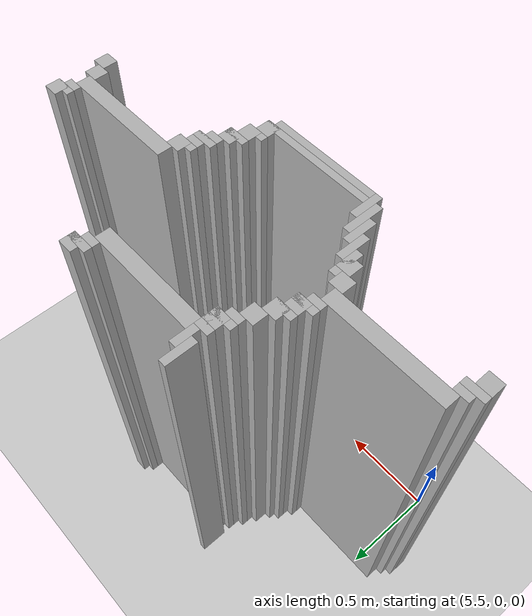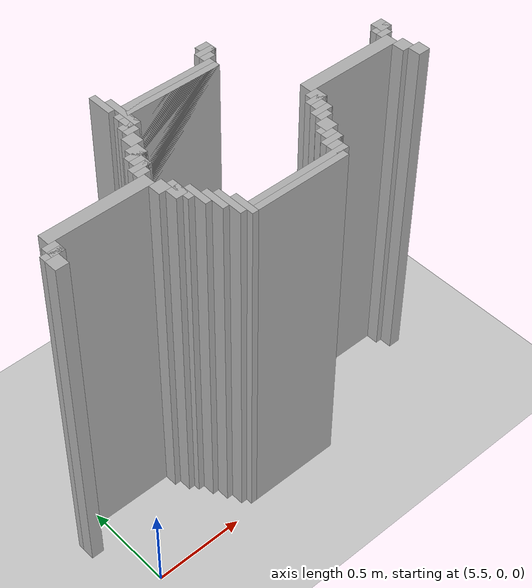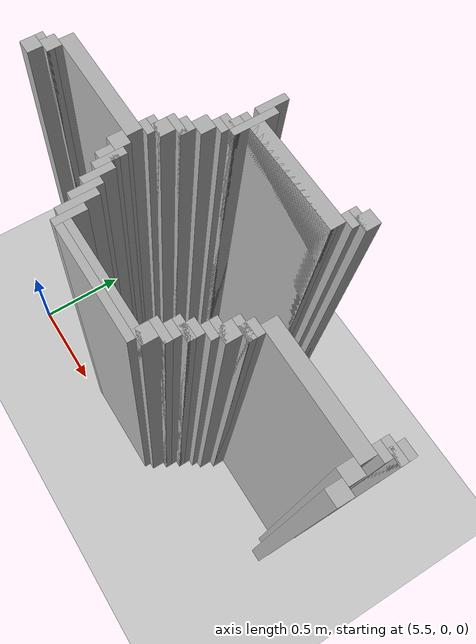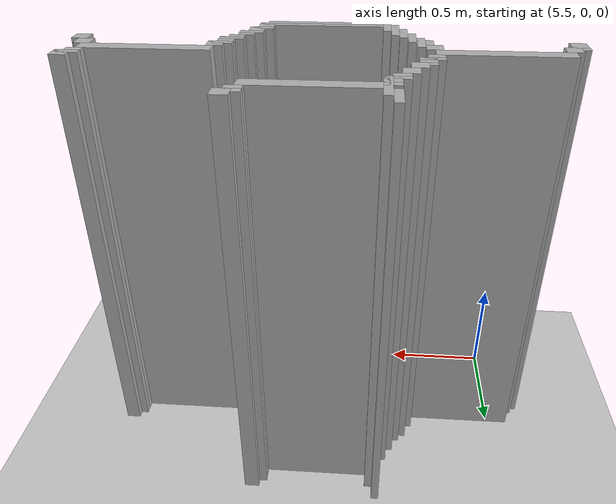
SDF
<sdf version="1.6">
 <world name="slam_world">
  <model name="ground_plane">
   <static>true</static>
   <link name="link">
    <collision name="collision">
     <geometry><plane><normal>0 0 1</normal><size>100 100</size></plane></geometry>
    </collision>
    <visual name="visual">
     <geometry><plane><normal>0 0 1</normal><size>100 100</size></plane></geometry>
     <material>
      <ambient>0.8 0.8 0.8 1</ambient>
      <diffuse>0.8 0.8 0.8 1</diffuse>
      <specular>0.8 0.8 0.8 1</specular>
     </material>
    </visual>
   </link>
  </model>
  <model name="wall_5399">
   <static>true</static>
   <pose>6.107888631090487 1.0092807424593968 1.0 0 0 0</pose>
   <link name="link">
    <collision name="collision">
     <geometry><box><size>0.03480278422273782 0.13921113689095127 2.0</size></box></geometry>
    </collision>
    <visual name="visual">
     <geometry><box><size>0.03480278422273782 0.13921113689095127 2.0</size></box></geometry>
     <material><ambient>0.5 0.5 0.5 1</ambient><diffuse>0.7 0.7 0.7 1</diffuse></material>
    </visual>
   </link>
  </model>
  <model name="wall_5409">
   <static>true</static>
   <pose>6.716937354988398 1.0092807424593968 1.0 0 0 0</pose>
   <link name="link">
    <collision name="collision">
     <geometry><box><size>0.06960556844547564 0.06960556844547564 2.0</size></box></geometry>
    </collision>
    <visual name="visual">
     <geometry><box><size>0.06960556844547564 0.06960556844547564 2.0</size></box></geometry>
     <material><ambient>0.5 0.5 0.5 1</ambient><diffuse>0.7 0.7 0.7 1</diffuse></material>
    </visual>
   </link>
  </model>
  <model name="wall_5415">
   <static>true</static>
   <pose>6.142691415313225 0.9048723897911832 1.0 0 0 0</pose>
   <link name="link">
    <collision name="collision">
     <geometry><box><size>0.03480278422273782 0.2088167053364269 2.0</size></box></geometry>
    </collision>
    <visual name="visual">
     <geometry><box><size>0.03480278422273782 0.2088167053364269 2.0</size></box></geometry>
     <material><ambient>0.5 0.5 0.5 1</ambient><diffuse>0.7 0.7 0.7 1</diffuse></material>
    </visual>
   </link>
  </model>
  <model name="wall_5416">
   <static>true</static>
   <pose>6.69953596287703 0.9918793503480278 1.0 0 0 0</pose>
   <link name="link">
    <collision name="collision">
     <geometry><box><size>0.10440835266821345 0.03480278422273782 2.0</size></box></geometry>
    </collision>
    <visual name="visual">
     <geometry><box><size>0.10440835266821345 0.03480278422273782 2.0</size></box></geometry>
     <material><ambient>0.5 0.5 0.5 1</ambient><diffuse>0.7 0.7 0.7 1</diffuse></material>
    </visual>
   </link>
  </model>
  <model name="wall_5425">
   <static>true</static>
   <pose>6.682134570765661 0.95707656612529 1.0 0 0 0</pose>
   <link name="link">
    <collision name="collision">
     <geometry><box><size>0.06960556844547564 0.03480278422273782 2.0</size></box></geometry>
    </collision>
    <visual name="visual">
     <geometry><box><size>0.06960556844547564 0.03480278422273782 2.0</size></box></geometry>
     <material><ambient>0.5 0.5 0.5 1</ambient><diffuse>0.7 0.7 0.7 1</diffuse></material>
    </visual>
   </link>
  </model>
  <model name="wall_5435">
   <static>true</static>
   <pose>6.421113689095128 0.9048723897911832 1.0 0 0 0</pose>
   <link name="link">
    <collision name="collision">
     <geometry><box><size>0.5220417633410672 0.06960556844547564 2.0</size></box></geometry>
    </collision>
    <visual name="visual">
     <geometry><box><size>0.5220417633410672 0.06960556844547564 2.0</size></box></geometry>
     <material><ambient>0.5 0.5 0.5 1</ambient><diffuse>0.7 0.7 0.7 1</diffuse></material>
    </visual>
   </link>
  </model>
  <model name="wall_5449">
   <static>true</static>
   <pose>6.386310904872389 0.8874709976798143 1.0 0 0 0</pose>
   <link name="link">
    <collision name="collision">
     <geometry><box><size>0.5916473317865429 0.03480278422273782 2.0</size></box></geometry>
    </collision>
    <visual name="visual">
     <geometry><box><size>0.5916473317865429 0.03480278422273782 2.0</size></box></geometry>
     <material><ambient>0.5 0.5 0.5 1</ambient><diffuse>0.7 0.7 0.7 1</diffuse></material>
    </visual>
   </link>
  </model>
  <model name="wall_5459">
   <static>true</static>
   <pose>6.125290023201856 0.8352668213457076 1.0 0 0 0</pose>
   <link name="link">
    <collision name="collision">
     <geometry><box><size>0.06960556844547564 0.06960556844547564 2.0</size></box></geometry>
    </collision>
    <visual name="visual">
     <geometry><box><size>0.06960556844547564 0.06960556844547564 2.0</size></box></geometry>
     <material><ambient>0.5 0.5 0.5 1</ambient><diffuse>0.7 0.7 0.7 1</diffuse></material>
    </visual>
   </link>
  </model>
  <model name="wall_5469">
   <static>true</static>
   <pose>6.107888631090487 0.8178654292343387 1.0 0 0 0</pose>
   <link name="link">
    <collision name="collision">
     <geometry><box><size>0.10440835266821345 0.03480278422273782 2.0</size></box></geometry>
    </collision>
    <visual name="visual">
     <geometry><box><size>0.10440835266821345 0.03480278422273782 2.0</size></box></geometry>
     <material><ambient>0.5 0.5 0.5 1</ambient><diffuse>0.7 0.7 0.7 1</diffuse></material>
    </visual>
   </link>
  </model>
  <model name="wall_5476">
   <static>true</static>
   <pose>6.090487238979118 0.7830626450116009 1.0 0 0 0</pose>
   <link name="link">
    <collision name="collision">
     <geometry><box><size>0.06960556844547564 0.03480278422273782 2.0</size></box></geometry>
    </collision>
    <visual name="visual">
     <geometry><box><size>0.06960556844547564 0.03480278422273782 2.0</size></box></geometry>
     <material><ambient>0.5 0.5 0.5 1</ambient><diffuse>0.7 0.7 0.7 1</diffuse></material>
    </visual>
   </link>
  </model>
  <model name="wall_5485">
   <static>true</static>
   <pose>6.05568445475638 0.7308584686774942 1.0 0 0 0</pose>
   <link name="link">
    <collision name="collision">
     <geometry><box><size>0.06960556844547564 0.06960556844547564 2.0</size></box></geometry>
    </collision>
    <visual name="visual">
     <geometry><box><size>0.06960556844547564 0.06960556844547564 2.0</size></box></geometry>
     <material><ambient>0.5 0.5 0.5 1</ambient><diffuse>0.7 0.7 0.7 1</diffuse></material>
    </visual>
   </link>
  </model>
  <model name="wall_5495">
   <static>true</static>
   <pose>6.020881670533642 0.6612529002320185 1.0 0 0 0</pose>
   <link name="link">
    <collision name="collision">
     <geometry><box><size>0.06960556844547564 0.06960556844547564 2.0</size></box></geometry>
    </collision>
    <visual name="visual">
     <geometry><box><size>0.06960556844547564 0.06960556844547564 2.0</size></box></geometry>
     <material><ambient>0.5 0.5 0.5 1</ambient><diffuse>0.7 0.7 0.7 1</diffuse></material>
    </visual>
   </link>
  </model>
  <model name="wall_5505">
   <static>true</static>
   <pose>6.003480278422273 0.6438515081206496 1.0 0 0 0</pose>
   <link name="link">
    <collision name="collision">
     <geometry><box><size>0.10440835266821345 0.03480278422273782 2.0</size></box></geometry>
    </collision>
    <visual name="visual">
     <geometry><box><size>0.10440835266821345 0.03480278422273782 2.0</size></box></geometry>
     <material><ambient>0.5 0.5 0.5 1</ambient><diffuse>0.7 0.7 0.7 1</diffuse></material>
    </visual>
   </link>
  </model>
  <model name="wall_5512">
   <static>true</static>
   <pose>5.986078886310905 0.5916473317865429 1.0 0 0 0</pose>
   <link name="link">
    <collision name="collision">
     <geometry><box><size>0.06960556844547564 0.06960556844547564 2.0</size></box></geometry>
    </collision>
    <visual name="visual">
     <geometry><box><size>0.06960556844547564 0.06960556844547564 2.0</size></box></geometry>
     <material><ambient>0.5 0.5 0.5 1</ambient><diffuse>0.7 0.7 0.7 1</diffuse></material>
    </visual>
   </link>
  </model>
  <model name="wall_5513">
   <static>true</static>
   <pose>7.447795823665893 0.5916473317865429 1.0 0 0 0</pose>
   <link name="link">
    <collision name="collision">
     <geometry><box><size>0.06960556844547564 0.06960556844547564 2.0</size></box></geometry>
    </collision>
    <visual name="visual">
     <geometry><box><size>0.06960556844547564 0.06960556844547564 2.0</size></box></geometry>
     <material><ambient>0.5 0.5 0.5 1</ambient><diffuse>0.7 0.7 0.7 1</diffuse></material>
    </visual>
   </link>
  </model>
  <model name="wall_5521">
   <static>true</static>
   <pose>5.968677494199536 0.574245939675174 1.0 0 0 0</pose>
   <link name="link">
    <collision name="collision">
     <geometry><box><size>0.10440835266821345 0.03480278422273782 2.0</size></box></geometry>
    </collision>
    <visual name="visual">
     <geometry><box><size>0.10440835266821345 0.03480278422273782 2.0</size></box></geometry>
     <material><ambient>0.5 0.5 0.5 1</ambient><diffuse>0.7 0.7 0.7 1</diffuse></material>
    </visual>
   </link>
  </model>
  <model name="wall_5522">
   <static>true</static>
   <pose>7.430394431554524 0.574245939675174 1.0 0 0 0</pose>
   <link name="link">
    <collision name="collision">
     <geometry><box><size>0.10440835266821345 0.03480278422273782 2.0</size></box></geometry>
    </collision>
    <visual name="visual">
     <geometry><box><size>0.10440835266821345 0.03480278422273782 2.0</size></box></geometry>
     <material><ambient>0.5 0.5 0.5 1</ambient><diffuse>0.7 0.7 0.7 1</diffuse></material>
    </visual>
   </link>
  </model>
  <model name="wall_5528">
   <static>true</static>
   <pose>5.951276102088166 0.5394431554524362 1.0 0 0 0</pose>
   <link name="link">
    <collision name="collision">
     <geometry><box><size>0.06960556844547564 0.03480278422273782 2.0</size></box></geometry>
    </collision>
    <visual name="visual">
     <geometry><box><size>0.06960556844547564 0.03480278422273782 2.0</size></box></geometry>
     <material><ambient>0.5 0.5 0.5 1</ambient><diffuse>0.7 0.7 0.7 1</diffuse></material>
    </visual>
   </link>
  </model>
  <model name="wall_5529">
   <static>true</static>
   <pose>7.412993039443156 0.5394431554524362 1.0 0 0 0</pose>
   <link name="link">
    <collision name="collision">
     <geometry><box><size>0.06960556844547564 0.03480278422273782 2.0</size></box></geometry>
    </collision>
    <visual name="visual">
     <geometry><box><size>0.06960556844547564 0.03480278422273782 2.0</size></box></geometry>
     <material><ambient>0.5 0.5 0.5 1</ambient><diffuse>0.7 0.7 0.7 1</diffuse></material>
    </visual>
   </link>
  </model>
  <model name="wall_5536">
   <static>true</static>
   <pose>5.672853828306264 0.4872389791183295 1.0 0 0 0</pose>
   <link name="link">
    <collision name="collision">
     <geometry><box><size>0.5568445475638051 0.06960556844547564 2.0</size></box></geometry>
    </collision>
    <visual name="visual">
     <geometry><box><size>0.5568445475638051 0.06960556844547564 2.0</size></box></geometry>
     <material><ambient>0.5 0.5 0.5 1</ambient><diffuse>0.7 0.7 0.7 1</diffuse></material>
    </visual>
   </link>
  </model>
  <model name="wall_5537">
   <static>true</static>
   <pose>7.134570765661253 0.4872389791183295 1.0 0 0 0</pose>
   <link name="link">
    <collision name="collision">
     <geometry><box><size>0.5568445475638051 0.06960556844547564 2.0</size></box></geometry>
    </collision>
    <visual name="visual">
     <geometry><box><size>0.5568445475638051 0.06960556844547564 2.0</size></box></geometry>
     <material><ambient>0.5 0.5 0.5 1</ambient><diffuse>0.7 0.7 0.7 1</diffuse></material>
    </visual>
   </link>
  </model>
  <model name="wall_5550">
   <static>true</static>
   <pose>5.3944315545243615 0.4176334106728538 1.0 0 0 0</pose>
   <link name="link">
    <collision name="collision">
     <geometry><box><size>0.06960556844547564 0.06960556844547564 2.0</size></box></geometry>
    </collision>
    <visual name="visual">
     <geometry><box><size>0.06960556844547564 0.06960556844547564 2.0</size></box></geometry>
     <material><ambient>0.5 0.5 0.5 1</ambient><diffuse>0.7 0.7 0.7 1</diffuse></material>
    </visual>
   </link>
  </model>
  <model name="wall_5551">
   <static>true</static>
   <pose>5.951276102088166 0.4176334106728538 1.0 0 0 0</pose>
   <link name="link">
    <collision name="collision">
     <geometry><box><size>0.06960556844547564 0.06960556844547564 2.0</size></box></geometry>
    </collision>
    <visual name="visual">
     <geometry><box><size>0.06960556844547564 0.06960556844547564 2.0</size></box></geometry>
     <material><ambient>0.5 0.5 0.5 1</ambient><diffuse>0.7 0.7 0.7 1</diffuse></material>
    </visual>
   </link>
  </model>
  <model name="wall_5552">
   <static>true</static>
   <pose>6.85614849187935 0.4176334106728538 1.0 0 0 0</pose>
   <link name="link">
    <collision name="collision">
     <geometry><box><size>0.06960556844547564 0.06960556844547564 2.0</size></box></geometry>
    </collision>
    <visual name="visual">
     <geometry><box><size>0.06960556844547564 0.06960556844547564 2.0</size></box></geometry>
     <material><ambient>0.5 0.5 0.5 1</ambient><diffuse>0.7 0.7 0.7 1</diffuse></material>
    </visual>
   </link>
  </model>
  <model name="wall_5553">
   <static>true</static>
   <pose>7.412993039443156 0.4176334106728538 1.0 0 0 0</pose>
   <link name="link">
    <collision name="collision">
     <geometry><box><size>0.06960556844547564 0.06960556844547564 2.0</size></box></geometry>
    </collision>
    <visual name="visual">
     <geometry><box><size>0.06960556844547564 0.06960556844547564 2.0</size></box></geometry>
     <material><ambient>0.5 0.5 0.5 1</ambient><diffuse>0.7 0.7 0.7 1</diffuse></material>
    </visual>
   </link>
  </model>
  <model name="wall_5570">
   <static>true</static>
   <pose>5.377030162412993 0.4002320185614849 1.0 0 0 0</pose>
   <link name="link">
    <collision name="collision">
     <geometry><box><size>0.10440835266821345 0.03480278422273782 2.0</size></box></geometry>
    </collision>
    <visual name="visual">
     <geometry><box><size>0.10440835266821345 0.03480278422273782 2.0</size></box></geometry>
     <material><ambient>0.5 0.5 0.5 1</ambient><diffuse>0.7 0.7 0.7 1</diffuse></material>
    </visual>
   </link>
  </model>
  <model name="wall_5571">
   <static>true</static>
   <pose>6.003480278422273 0.34802784222737815 1.0 0 0 0</pose>
   <link name="link">
    <collision name="collision">
     <geometry><box><size>0.03480278422273782 0.13921113689095127 2.0</size></box></geometry>
    </collision>
    <visual name="visual">
     <geometry><box><size>0.03480278422273782 0.13921113689095127 2.0</size></box></geometry>
     <material><ambient>0.5 0.5 0.5 1</ambient><diffuse>0.7 0.7 0.7 1</diffuse></material>
    </visual>
   </link>
  </model>
  <model name="wall_5572">
   <static>true</static>
   <pose>6.838747099767981 0.4002320185614849 1.0 0 0 0</pose>
   <link name="link">
    <collision name="collision">
     <geometry><box><size>0.10440835266821345 0.03480278422273782 2.0</size></box></geometry>
    </collision>
    <visual name="visual">
     <geometry><box><size>0.10440835266821345 0.03480278422273782 2.0</size></box></geometry>
     <material><ambient>0.5 0.5 0.5 1</ambient><diffuse>0.7 0.7 0.7 1</diffuse></material>
    </visual>
   </link>
  </model>
  <model name="wall_5590">
   <static>true</static>
   <pose>5.359628770301624 0.34802784222737815 1.0 0 0 0</pose>
   <link name="link">
    <collision name="collision">
     <geometry><box><size>0.06960556844547564 0.06960556844547564 2.0</size></box></geometry>
    </collision>
    <visual name="visual">
     <geometry><box><size>0.06960556844547564 0.06960556844547564 2.0</size></box></geometry>
     <material><ambient>0.5 0.5 0.5 1</ambient><diffuse>0.7 0.7 0.7 1</diffuse></material>
    </visual>
   </link>
  </model>
  <model name="wall_5591">
   <static>true</static>
   <pose>5.986078886310905 0.34802784222737815 1.0 0 0 0</pose>
   <link name="link">
    <collision name="collision">
     <geometry><box><size>0.06960556844547564 0.06960556844547564 2.0</size></box></geometry>
    </collision>
    <visual name="visual">
     <geometry><box><size>0.06960556844547564 0.06960556844547564 2.0</size></box></geometry>
     <material><ambient>0.5 0.5 0.5 1</ambient><diffuse>0.7 0.7 0.7 1</diffuse></material>
    </visual>
   </link>
  </model>
  <model name="wall_5592">
   <static>true</static>
   <pose>6.821345707656612 0.34802784222737815 1.0 0 0 0</pose>
   <link name="link">
    <collision name="collision">
     <geometry><box><size>0.06960556844547564 0.06960556844547564 2.0</size></box></geometry>
    </collision>
    <visual name="visual">
     <geometry><box><size>0.06960556844547564 0.06960556844547564 2.0</size></box></geometry>
     <material><ambient>0.5 0.5 0.5 1</ambient><diffuse>0.7 0.7 0.7 1</diffuse></material>
    </visual>
   </link>
  </model>
  <model name="wall_5593">
   <static>true</static>
   <pose>7.447795823665893 0.34802784222737815 1.0 0 0 0</pose>
   <link name="link">
    <collision name="collision">
     <geometry><box><size>0.06960556844547564 0.06960556844547564 2.0</size></box></geometry>
    </collision>
    <visual name="visual">
     <geometry><box><size>0.06960556844547564 0.06960556844547564 2.0</size></box></geometry>
     <material><ambient>0.5 0.5 0.5 1</ambient><diffuse>0.7 0.7 0.7 1</diffuse></material>
    </visual>
   </link>
  </model>
  <model name="wall_5611">
   <static>true</static>
   <pose>6.038283062645012 0.27842227378190254 1.0 0 0 0</pose>
   <link name="link">
    <collision name="collision">
     <geometry><box><size>0.03480278422273782 0.13921113689095127 2.0</size></box></geometry>
    </collision>
    <visual name="visual">
     <geometry><box><size>0.03480278422273782 0.13921113689095127 2.0</size></box></geometry>
     <material><ambient>0.5 0.5 0.5 1</ambient><diffuse>0.7 0.7 0.7 1</diffuse></material>
    </visual>
   </link>
  </model>
  <model name="wall_5612">
   <static>true</static>
   <pose>6.803944315545244 0.3306264501160093 1.0 0 0 0</pose>
   <link name="link">
    <collision name="collision">
     <geometry><box><size>0.10440835266821345 0.03480278422273782 2.0</size></box></geometry>
    </collision>
    <visual name="visual">
     <geometry><box><size>0.10440835266821345 0.03480278422273782 2.0</size></box></geometry>
     <material><ambient>0.5 0.5 0.5 1</ambient><diffuse>0.7 0.7 0.7 1</diffuse></material>
    </visual>
   </link>
  </model>
  <model name="wall_5627">
   <static>true</static>
   <pose>6.786542923433874 0.29582366589327147 1.0 0 0 0</pose>
   <link name="link">
    <collision name="collision">
     <geometry><box><size>0.06960556844547564 0.03480278422273782 2.0</size></box></geometry>
    </collision>
    <visual name="visual">
     <geometry><box><size>0.06960556844547564 0.03480278422273782 2.0</size></box></geometry>
     <material><ambient>0.5 0.5 0.5 1</ambient><diffuse>0.7 0.7 0.7 1</diffuse></material>
    </visual>
   </link>
  </model>
  <model name="wall_5641">
   <static>true</static>
   <pose>6.073085846867749 0.2088167053364269 1.0 0 0 0</pose>
   <link name="link">
    <collision name="collision">
     <geometry><box><size>0.03480278422273782 0.13921113689095127 2.0</size></box></geometry>
    </collision>
    <visual name="visual">
     <geometry><box><size>0.03480278422273782 0.13921113689095127 2.0</size></box></geometry>
     <material><ambient>0.5 0.5 0.5 1</ambient><diffuse>0.7 0.7 0.7 1</diffuse></material>
    </visual>
   </link>
  </model>
  <model name="wall_5642">
   <static>true</static>
   <pose>6.751740139211137 0.24361948955916474 1.0 0 0 0</pose>
   <link name="link">
    <collision name="collision">
     <geometry><box><size>0.06960556844547564 0.06960556844547564 2.0</size></box></geometry>
    </collision>
    <visual name="visual">
     <geometry><box><size>0.06960556844547564 0.06960556844547564 2.0</size></box></geometry>
     <material><ambient>0.5 0.5 0.5 1</ambient><diffuse>0.7 0.7 0.7 1</diffuse></material>
    </visual>
   </link>
  </model>
  <model name="wall_5661">
   <static>true</static>
   <pose>6.107888631090487 0.15661252900232017 1.0 0 0 0</pose>
   <link name="link">
    <collision name="collision">
     <geometry><box><size>0.03480278422273782 0.17401392111368907 2.0</size></box></geometry>
    </collision>
    <visual name="visual">
     <geometry><box><size>0.03480278422273782 0.17401392111368907 2.0</size></box></geometry>
     <material><ambient>0.5 0.5 0.5 1</ambient><diffuse>0.7 0.7 0.7 1</diffuse></material>
    </visual>
   </link>
  </model>
  <model name="wall_5662">
   <static>true</static>
   <pose>6.734338747099768 0.2262180974477958 1.0 0 0 0</pose>
   <link name="link">
    <collision name="collision">
     <geometry><box><size>0.10440835266821345 0.03480278422273782 2.0</size></box></geometry>
    </collision>
    <visual name="visual">
     <geometry><box><size>0.10440835266821345 0.03480278422273782 2.0</size></box></geometry>
     <material><ambient>0.5 0.5 0.5 1</ambient><diffuse>0.7 0.7 0.7 1</diffuse></material>
    </visual>
   </link>
  </model>
  <model name="wall_5677">
   <static>true</static>
   <pose>6.716937354988398 0.17401392111368907 1.0 0 0 0</pose>
   <link name="link">
    <collision name="collision">
     <geometry><box><size>0.06960556844547564 0.06960556844547564 2.0</size></box></geometry>
    </collision>
    <visual name="visual">
     <geometry><box><size>0.06960556844547564 0.06960556844547564 2.0</size></box></geometry>
     <material><ambient>0.5 0.5 0.5 1</ambient><diffuse>0.7 0.7 0.7 1</diffuse></material>
    </visual>
   </link>
  </model>
  <model name="wall_5691">
   <static>true</static>
   <pose>6.142691415313225 0.10440835266821345 1.0 0 0 0</pose>
   <link name="link">
    <collision name="collision">
     <geometry><box><size>0.03480278422273782 0.13921113689095127 2.0</size></box></geometry>
    </collision>
    <visual name="visual">
     <geometry><box><size>0.03480278422273782 0.13921113689095127 2.0</size></box></geometry>
     <material><ambient>0.5 0.5 0.5 1</ambient><diffuse>0.7 0.7 0.7 1</diffuse></material>
    </visual>
   </link>
  </model>
  <model name="wall_5692">
   <static>true</static>
   <pose>6.69953596287703 0.15661252900232017 1.0 0 0 0</pose>
   <link name="link">
    <collision name="collision">
     <geometry><box><size>0.10440835266821345 0.03480278422273782 2.0</size></box></geometry>
    </collision>
    <visual name="visual">
     <geometry><box><size>0.10440835266821345 0.03480278422273782 2.0</size></box></geometry>
     <material><ambient>0.5 0.5 0.5 1</ambient><diffuse>0.7 0.7 0.7 1</diffuse></material>
    </visual>
   </link>
  </model>
  <model name="wall_5707">
   <static>true</static>
   <pose>6.682134570765661 0.10440835266821345 1.0 0 0 0</pose>
   <link name="link">
    <collision name="collision">
     <geometry><box><size>0.06960556844547564 0.06960556844547564 2.0</size></box></geometry>
    </collision>
    <visual name="visual">
     <geometry><box><size>0.06960556844547564 0.06960556844547564 2.0</size></box></geometry>
     <material><ambient>0.5 0.5 0.5 1</ambient><diffuse>0.7 0.7 0.7 1</diffuse></material>
    </visual>
   </link>
  </model>
  <model name="wall_5717">
   <static>true</static>
   <pose>6.438515081206496 0.08700696055684454 1.0 0 0 0</pose>
   <link name="link">
    <collision name="collision">
     <geometry><box><size>0.5568445475638051 0.03480278422273782 2.0</size></box></geometry>
    </collision>
    <visual name="visual">
     <geometry><box><size>0.5568445475638051 0.03480278422273782 2.0</size></box></geometry>
     <material><ambient>0.5 0.5 0.5 1</ambient><diffuse>0.7 0.7 0.7 1</diffuse></material>
    </visual>
   </link>
  </model>
  <model name="wall_5728">
   <static>true</static>
   <pose>6.421113689095128 0.052204176334106726 1.0 0 0 0</pose>
   <link name="link">
    <collision name="collision">
     <geometry><box><size>0.5220417633410672 0.03480278422273782 2.0</size></box></geometry>
    </collision>
    <visual name="visual">
     <geometry><box><size>0.5220417633410672 0.03480278422273782 2.0</size></box></geometry>
     <material><ambient>0.5 0.5 0.5 1</ambient><diffuse>0.7 0.7 0.7 1</diffuse></material>
    </visual>
   </link>
  </model>
 </world>
</sdf>
